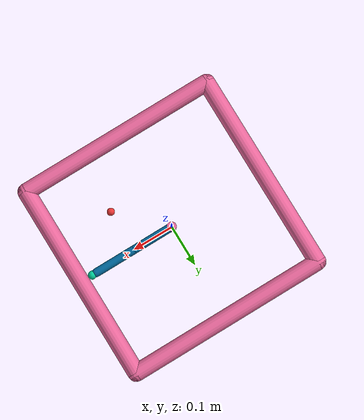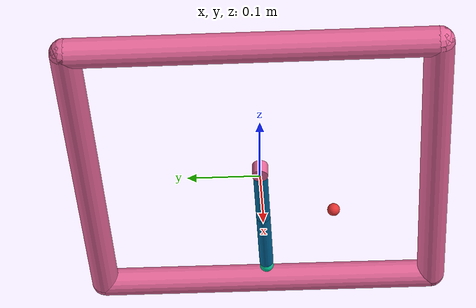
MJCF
<!--&lt;!&ndash; Arena &ndash;&gt;-->
		<!--&lt;!&ndash; Arm &ndash;&gt;-->
		<!--&lt;!&ndash; Target &ndash;&gt;-->

<mujoco model="reacher">
	<include file="./common/skybox_var.xml"/>
	<compiler angle="radian" inertiafromgeom="true"/>
	<default>
		<joint armature="1" damping="1" limited="true"/>
		<geom contype="0" friction="1 0.1 0.1" rgba="0.7 0.7 0 1"/>
	</default>
	<option gravity="0 0 -9.81" integrator="RK4" timestep="0.01"/>
	<worldbody>
		<camera name="fixed" pos="0 0 .6" quat="1 0 0 0"/>

		<!-- Arena -->
		<geom conaffinity="0" fromto="-.24 -.24 .01  .24 -.24 .01" name="sideS" rgba="0.9 0.4 0.6 1" size=".02" type="capsule"/>
		<geom conaffinity="0" fromto=" .24 -.24 .01  .24  .24 .01" name="sideE" rgba="0.9 0.4 0.6 1" size=".02" type="capsule"/>
		<geom conaffinity="0" fromto="-.24  .24 .01  .24  .24 .01" name="sideN" rgba="0.9 0.4 0.6 1" size=".02" type="capsule"/>
		<geom conaffinity="0" fromto="-.24 -.24 .01 -.24  .24 .01" name="sideW" rgba="0.9 0.4 0.6 1" size=".02" type="capsule"/>
		<!-- Arm -->
		<geom conaffinity="0" contype="0" fromto="0 0 0 0 0 0.02" name="root" rgba="0.9 0.4 0.6 1" size=".011" type="cylinder"/>
		<body name="body0" pos="0 0 .01">
			<geom fromto="0 0 0 0.1 0 0" name="link0" rgba="0.0 0.4 0.6 1" size=".01" type="capsule"/>
			<joint axis="0 0 1" limited="false" name="joint0" pos="0 0 0" type="hinge"/>
			<body name="body1" pos="0.1 0 0">
				<joint axis="0 0 1" limited="true" name="joint1" pos="0 0 0" range="-3.0 3.0" type="hinge"/>
				<geom fromto="0 0 0 0.1 0 0" name="link1" rgba="0.0 0.4 0.6 1" size=".01" type="capsule"/>
				<body name="fingertip" pos="0.11 0 0">
					<geom contype="0" name="fingertip" pos="0 0 0" rgba="0.0 0.8 0.6 1" size=".01" type="sphere"/>
				</body>
			</body>
		</body>
		<!-- Target -->
		<body name="target" pos=".1 -.1 .02">
			<joint armature="0" axis="1 0 0" damping="0" limited="true" name="target_x" pos="0 0 0" range="-.3 .3" ref=".1" stiffness="0" type="slide" frictionloss="0"/>
			<joint armature="0" axis="0 1 0" damping="0" limited="true" name="target_y" pos="0 0 0" range="-.3 .3" ref="-.1" stiffness="0" type="slide" frictionloss="0"/>
			<geom conaffinity="0" contype="0" name="target" pos="0 0 0" rgba="0.9 0.2 0.2 1" size=".009" type="sphere" material="target_mat"/>
		</body>
	</worldbody>
	<actuator>
		<motor ctrllimited="true" ctrlrange="-1.0 1.0" gear="200.0" joint="joint0"/>
		<motor ctrllimited="true" ctrlrange="-1.0 1.0" gear="200.0" joint="joint1"/>
	</actuator>
    <asset>
        <texture builtin="flat" name="base_tex" height="32" width="32" rgb1="0.9 0.2 0.2" type="cube"/>
        <material name="target_mat" shininess="0.03" specular="0.75" texture="base_tex"/>
    </asset>
</mujoco>

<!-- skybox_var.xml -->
<mujoco>
  <asset>
      <texture name="skybox" type="skybox" builtin="gradient" rgb1=".4 .6 .8" rgb2="0 0 0"
               width="84" height="84" mark="random" markrgb="1 1 1"/>
  </asset>
</mujoco>
